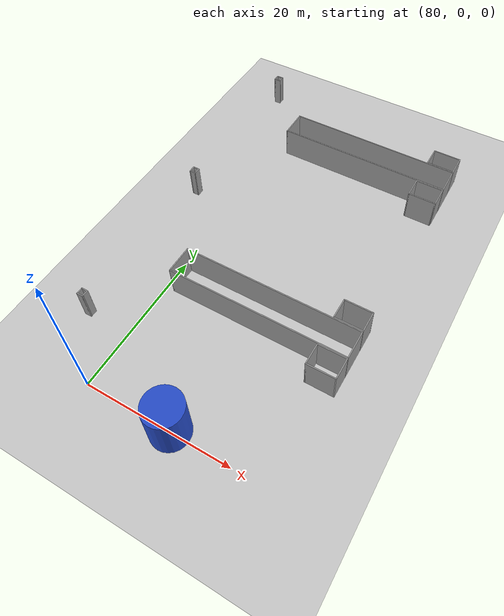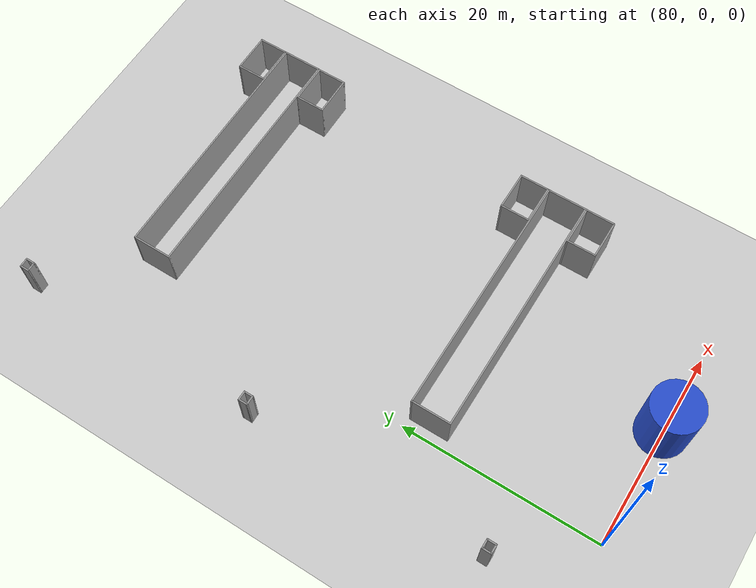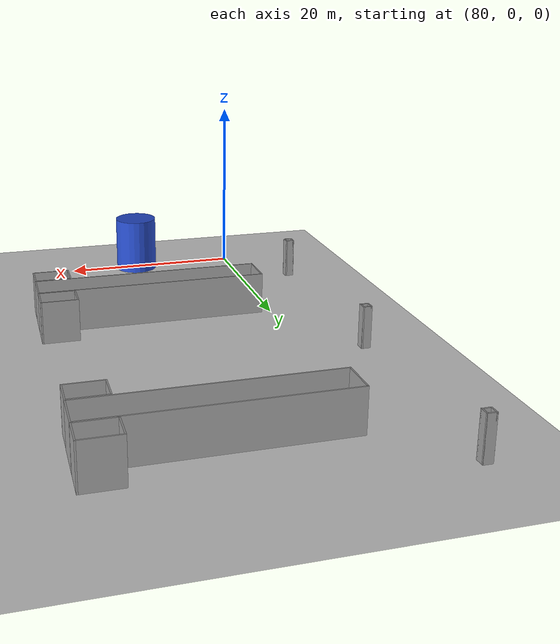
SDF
<sdf version="1.6">
 <world name="default">
  <model name="ground_plane">
   <static>1</static>
   <link name="link">
    <collision name="collision">
     <geometry><plane><normal>0 0 1</normal><size>320 320</size></plane></geometry>
     <surface>
      <contact><collide_bitmask>65535</collide_bitmask></contact>
      <friction><ode><mu>100</mu><mu2>50</mu2></ode></friction>
     </surface>
    </collision>
    <visual name="visual">
     <cast_shadows>0</cast_shadows>
     <geometry><plane><normal>0 0 1</normal><size>320 320</size></plane></geometry>
     <material>
      <script><uri>file://media/materials/scripts/gazebo.material</uri><name>Gazebo/Grey</name></script>
     </material>
    </visual>
   </link>
  </model>
  <model name="base4x25_11">
   <pose>93.5498 47.766 0 0 -0 0</pose>
   <link name="Wall_11">
    <collision name="Wall_11_Collision">
     <geometry><box><size>4 0.15 6.555</size></box></geometry>
     <pose>0 0 1.25 0 -0 0</pose>
    </collision>
    <visual name="Wall_11_Visual">
     <pose>0 0 1.25 0 -0 0</pose>
     <geometry><box><size>4 0.15 6.555</size></box></geometry>
     <material>
      <script><uri>file://media/materials/scripts/gazebo.material</uri><name>Gazebo/Grey</name></script>
      <ambient>1 1 1 1</ambient>
     </material>
     <meta><layer>0</layer></meta>
    </visual>
    <pose>-12.425 0 0 0 -0 -1.5708</pose>
   </link>
   <link name="Wall_12">
    <collision name="Wall_12_Collision">
     <geometry><box><size>25 0.15 6.555</size></box></geometry>
     <pose>0 0 1.25 0 -0 0</pose>
    </collision>
    <visual name="Wall_12_Visual">
     <pose>0 0 1.25 0 -0 0</pose>
     <geometry><box><size>25 0.15 6.555</size></box></geometry>
     <material>
      <script><uri>file://media/materials/scripts/gazebo.material</uri><name>Gazebo/Grey</name></script>
      <ambient>1 1 1 1</ambient>
     </material>
     <meta><layer>0</layer></meta>
    </visual>
    <pose>0 -1.925 0 0 -0 0</pose>
   </link>
   <link name="Wall_13">
    <collision name="Wall_13_Collision">
     <geometry><box><size>4 0.15 6.555</size></box></geometry>
     <pose>0 0 1.25 0 -0 0</pose>
    </collision>
    <visual name="Wall_13_Visual">
     <pose>0 0 1.25 0 -0 0</pose>
     <geometry><box><size>4 0.15 6.555</size></box></geometry>
     <material>
      <script><uri>file://media/materials/scripts/gazebo.material</uri><name>Gazebo/Grey</name></script>
      <ambient>1 1 1 1</ambient>
     </material>
     <meta><layer>0</layer></meta>
    </visual>
    <pose>12.425 0 0 0 -0 1.5708</pose>
   </link>
   <link name="Wall_14">
    <collision name="Wall_14_Collision">
     <geometry><box><size>25 0.15 6.555</size></box></geometry>
     <pose>0 0 1.25 0 -0 0</pose>
    </collision>
    <visual name="Wall_14_Visual">
     <pose>0 0 1.25 0 -0 0</pose>
     <geometry><box><size>25 0.15 6.555</size></box></geometry>
     <material>
      <script><uri>file://media/materials/scripts/gazebo.material</uri><name>Gazebo/Grey</name></script>
      <ambient>1 1 1 1</ambient>
     </material>
     <meta><layer>0</layer></meta>
    </visual>
    <pose>0 1.925 0 0 -0 3.14159</pose>
   </link>
   <static>1</static>
  </model>
  <model name="base4x25_12">
   <pose>93.4688 17.821 0 0 -0 0</pose>
   <link name="Wall_11">
    <collision name="Wall_11_Collision">
     <geometry><box><size>4 0.15 6.555</size></box></geometry>
     <pose>0 0 1.25 0 -0 0</pose>
    </collision>
    <visual name="Wall_11_Visual">
     <pose>0 0 1.25 0 -0 0</pose>
     <geometry><box><size>4 0.15 6.555</size></box></geometry>
     <material>
      <script><uri>file://media/materials/scripts/gazebo.material</uri><name>Gazebo/Grey</name></script>
      <ambient>1 1 1 1</ambient>
     </material>
     <meta><layer>0</layer></meta>
    </visual>
    <pose>-12.425 0 0 0 -0 -1.5708</pose>
   </link>
   <link name="Wall_12">
    <collision name="Wall_12_Collision">
     <geometry><box><size>25 0.15 6.555</size></box></geometry>
     <pose>0 0 1.25 0 -0 0</pose>
    </collision>
    <visual name="Wall_12_Visual">
     <pose>0 0 1.25 0 -0 0</pose>
     <geometry><box><size>25 0.15 6.555</size></box></geometry>
     <material>
      <script><uri>file://media/materials/scripts/gazebo.material</uri><name>Gazebo/Grey</name></script>
      <ambient>1 1 1 1</ambient>
     </material>
     <meta><layer>0</layer></meta>
    </visual>
    <pose>0 -1.925 0 0 -0 0</pose>
   </link>
   <link name="Wall_13">
    <collision name="Wall_13_Collision">
     <geometry><box><size>4 0.15 6.555</size></box></geometry>
     <pose>0 0 1.25 0 -0 0</pose>
    </collision>
    <visual name="Wall_13_Visual">
     <pose>0 0 1.25 0 -0 0</pose>
     <geometry><box><size>4 0.15 6.555</size></box></geometry>
     <material>
      <script><uri>file://media/materials/scripts/gazebo.material</uri><name>Gazebo/Grey</name></script>
      <ambient>1 1 1 1</ambient>
     </material>
     <meta><layer>0</layer></meta>
    </visual>
    <pose>12.425 0 0 0 -0 1.5708</pose>
   </link>
   <link name="Wall_14">
    <collision name="Wall_14_Collision">
     <geometry><box><size>25 0.15 6.555</size></box></geometry>
     <pose>0 0 1.25 0 -0 0</pose>
    </collision>
    <visual name="Wall_14_Visual">
     <pose>0 0 1.25 0 -0 0</pose>
     <geometry><box><size>25 0.15 6.555</size></box></geometry>
     <material>
      <script><uri>file://media/materials/scripts/gazebo.material</uri><name>Gazebo/Grey</name></script>
      <ambient>1 1 1 1</ambient>
     </material>
     <meta><layer>0</layer></meta>
    </visual>
    <pose>0 1.925 0 0 -0 3.14159</pose>
   </link>
   <static>1</static>
  </model>
  <model name="box_1mx1m_clone_3">
   <pose>73.6125 56.2381 0 0 -0 0</pose>
   <link name="Wall_10">
    <collision name="Wall_10_Collision">
     <geometry><box><size>1 0.15 6.555</size></box></geometry>
     <pose>0 0 1.25 0 -0 0</pose>
    </collision>
    <visual name="Wall_10_Visual">
     <pose>0 0 1.25 0 -0 0</pose>
     <geometry><box><size>1 0.15 6.555</size></box></geometry>
     <material>
      <script><uri>file://media/materials/scripts/gazebo.material</uri><name>Gazebo/Grey</name></script>
      <ambient>1 1 1 1</ambient>
     </material>
     <meta><layer>0</layer></meta>
    </visual>
    <pose>-0.425 0 0 0 -0 -1.5708</pose>
   </link>
   <link name="Wall_11">
    <collision name="Wall_11_Collision">
     <geometry><box><size>1 0.15 6.555</size></box></geometry>
     <pose>0 0 1.25 0 -0 0</pose>
    </collision>
    <visual name="Wall_11_Visual">
     <pose>0 0 1.25 0 -0 0</pose>
     <geometry><box><size>1 0.15 6.555</size></box></geometry>
     <material>
      <script><uri>file://media/materials/scripts/gazebo.material</uri><name>Gazebo/Grey</name></script>
      <ambient>1 1 1 1</ambient>
     </material>
     <meta><layer>0</layer></meta>
    </visual>
    <pose>0 -0.425 0 0 -0 0</pose>
   </link>
   <link name="Wall_12">
    <collision name="Wall_12_Collision">
     <geometry><box><size>1 0.15 6.555</size></box></geometry>
     <pose>0 0 1.25 0 -0 0</pose>
    </collision>
    <visual name="Wall_12_Visual">
     <pose>0 0 1.25 0 -0 0</pose>
     <geometry><box><size>1 0.15 6.555</size></box></geometry>
     <material>
      <script><uri>file://media/materials/scripts/gazebo.material</uri><name>Gazebo/Grey</name></script>
      <ambient>1 1 1 1</ambient>
     </material>
     <meta><layer>0</layer></meta>
    </visual>
    <pose>0.425 0 0 0 -0 1.5708</pose>
   </link>
   <link name="Wall_13">
    <collision name="Wall_13_Collision">
     <geometry><box><size>1 0.15 6.555</size></box></geometry>
     <pose>0 0 1.25 0 -0 0</pose>
    </collision>
    <visual name="Wall_13_Visual">
     <pose>0 0 1.25 0 -0 0</pose>
     <geometry><box><size>1 0.15 6.555</size></box></geometry>
     <material>
      <script><uri>file://media/materials/scripts/gazebo.material</uri><name>Gazebo/Grey</name></script>
      <ambient>1 1 1 1</ambient>
     </material>
     <meta><layer>0</layer></meta>
    </visual>
    <pose>0 0.425 0 0 -0 3.14159</pose>
   </link>
   <static>1</static>
  </model>
  <model name="box_1mx1m_clone_4">
   <pose>73.6506 32.002 0 0 -0 0</pose>
   <link name="Wall_10">
    <collision name="Wall_10_Collision">
     <geometry><box><size>1 0.15 6.555</size></box></geometry>
     <pose>0 0 1.25 0 -0 0</pose>
    </collision>
    <visual name="Wall_10_Visual">
     <pose>0 0 1.25 0 -0 0</pose>
     <geometry><box><size>1 0.15 6.555</size></box></geometry>
     <material>
      <script><uri>file://media/materials/scripts/gazebo.material</uri><name>Gazebo/Grey</name></script>
      <ambient>1 1 1 1</ambient>
     </material>
     <meta><layer>0</layer></meta>
    </visual>
    <pose>-0.425 0 0 0 -0 -1.5708</pose>
   </link>
   <link name="Wall_11">
    <collision name="Wall_11_Collision">
     <geometry><box><size>1 0.15 6.555</size></box></geometry>
     <pose>0 0 1.25 0 -0 0</pose>
    </collision>
    <visual name="Wall_11_Visual">
     <pose>0 0 1.25 0 -0 0</pose>
     <geometry><box><size>1 0.15 6.555</size></box></geometry>
     <material>
      <script><uri>file://media/materials/scripts/gazebo.material</uri><name>Gazebo/Grey</name></script>
      <ambient>1 1 1 1</ambient>
     </material>
     <meta><layer>0</layer></meta>
    </visual>
    <pose>0 -0.425 0 0 -0 0</pose>
   </link>
   <link name="Wall_12">
    <collision name="Wall_12_Collision">
     <geometry><box><size>1 0.15 6.555</size></box></geometry>
     <pose>0 0 1.25 0 -0 0</pose>
    </collision>
    <visual name="Wall_12_Visual">
     <pose>0 0 1.25 0 -0 0</pose>
     <geometry><box><size>1 0.15 6.555</size></box></geometry>
     <material>
      <script><uri>file://media/materials/scripts/gazebo.material</uri><name>Gazebo/Grey</name></script>
      <ambient>1 1 1 1</ambient>
     </material>
     <meta><layer>0</layer></meta>
    </visual>
    <pose>0.425 0 0 0 -0 1.5708</pose>
   </link>
   <link name="Wall_13">
    <collision name="Wall_13_Collision">
     <geometry><box><size>1 0.15 6.555</size></box></geometry>
     <pose>0 0 1.25 0 -0 0</pose>
    </collision>
    <visual name="Wall_13_Visual">
     <pose>0 0 1.25 0 -0 0</pose>
     <geometry><box><size>1 0.15 6.555</size></box></geometry>
     <material>
      <script><uri>file://media/materials/scripts/gazebo.material</uri><name>Gazebo/Grey</name></script>
      <ambient>1 1 1 1</ambient>
     </material>
     <meta><layer>0</layer></meta>
    </visual>
    <pose>0 0.425 0 0 -0 3.14159</pose>
   </link>
   <static>1</static>
  </model>
  <model name="box_1mx1m_clone_5">
   <pose>73.7247 7.91393 0 0 -0 0</pose>
   <link name="Wall_10">
    <collision name="Wall_10_Collision">
     <geometry><box><size>1 0.15 6.555</size></box></geometry>
     <pose>0 0 1.25 0 -0 0</pose>
    </collision>
    <visual name="Wall_10_Visual">
     <pose>0 0 1.25 0 -0 0</pose>
     <geometry><box><size>1 0.15 6.555</size></box></geometry>
     <material>
      <script><uri>file://media/materials/scripts/gazebo.material</uri><name>Gazebo/Grey</name></script>
      <ambient>1 1 1 1</ambient>
     </material>
     <meta><layer>0</layer></meta>
    </visual>
    <pose>-0.425 0 0 0 -0 -1.5708</pose>
   </link>
   <link name="Wall_11">
    <collision name="Wall_11_Collision">
     <geometry><box><size>1 0.15 6.555</size></box></geometry>
     <pose>0 0 1.25 0 -0 0</pose>
    </collision>
    <visual name="Wall_11_Visual">
     <pose>0 0 1.25 0 -0 0</pose>
     <geometry><box><size>1 0.15 6.555</size></box></geometry>
     <material>
      <script><uri>file://media/materials/scripts/gazebo.material</uri><name>Gazebo/Grey</name></script>
      <ambient>1 1 1 1</ambient>
     </material>
     <meta><layer>0</layer></meta>
    </visual>
    <pose>0 -0.425 0 0 -0 0</pose>
   </link>
   <link name="Wall_12">
    <collision name="Wall_12_Collision">
     <geometry><box><size>1 0.15 6.555</size></box></geometry>
     <pose>0 0 1.25 0 -0 0</pose>
    </collision>
    <visual name="Wall_12_Visual">
     <pose>0 0 1.25 0 -0 0</pose>
     <geometry><box><size>1 0.15 6.555</size></box></geometry>
     <material>
      <script><uri>file://media/materials/scripts/gazebo.material</uri><name>Gazebo/Grey</name></script>
      <ambient>1 1 1 1</ambient>
     </material>
     <meta><layer>0</layer></meta>
    </visual>
    <pose>0.425 0 0 0 -0 1.5708</pose>
   </link>
   <link name="Wall_13">
    <collision name="Wall_13_Collision">
     <geometry><box><size>1 0.15 6.555</size></box></geometry>
     <pose>0 0 1.25 0 -0 0</pose>
    </collision>
    <visual name="Wall_13_Visual">
     <pose>0 0 1.25 0 -0 0</pose>
     <geometry><box><size>1 0.15 6.555</size></box></geometry>
     <material>
      <script><uri>file://media/materials/scripts/gazebo.material</uri><name>Gazebo/Grey</name></script>
      <ambient>1 1 1 1</ambient>
     </material>
     <meta><layer>0</layer></meta>
    </visual>
    <pose>0 0.425 0 0 -0 3.14159</pose>
   </link>
   <static>1</static>
  </model>
  <model name="base3x4_3_clone_2">
   <pose>104.047 51.2407 0 0 -0 0</pose>
   <link name="Wall_18">
    <collision name="Wall_18_Collision">
     <geometry><box><size>3 0.15 6.555</size></box></geometry>
     <pose>0 0 1.25 0 -0 0</pose>
    </collision>
    <visual name="Wall_18_Visual">
     <pose>0 0 1.25 0 -0 0</pose>
     <geometry><box><size>3 0.15 6.555</size></box></geometry>
     <material>
      <script><uri>file://media/materials/scripts/gazebo.material</uri><name>Gazebo/Grey</name></script>
      <ambient>1 1 1 1</ambient>
     </material>
     <meta><layer>0</layer></meta>
    </visual>
    <pose>-1.925 -0 0 0 -0 -1.5708</pose>
   </link>
   <link name="Wall_19">
    <collision name="Wall_19_Collision">
     <geometry><box><size>4 0.15 6.555</size></box></geometry>
     <pose>0 0 1.25 0 -0 0</pose>
    </collision>
    <visual name="Wall_19_Visual">
     <pose>0 0 1.25 0 -0 0</pose>
     <geometry><box><size>4 0.15 6.555</size></box></geometry>
     <material>
      <script><uri>file://media/materials/scripts/gazebo.material</uri><name>Gazebo/Grey</name></script>
      <ambient>1 1 1 1</ambient>
     </material>
     <meta><layer>0</layer></meta>
    </visual>
    <pose>-0 -1.425 0 0 -0 0</pose>
   </link>
   <link name="Wall_20">
    <collision name="Wall_20_Collision">
     <geometry><box><size>3 0.15 6.555</size></box></geometry>
     <pose>0 0 1.25 0 -0 0</pose>
    </collision>
    <visual name="Wall_20_Visual">
     <pose>0 0 1.25 0 -0 0</pose>
     <geometry><box><size>3 0.15 6.555</size></box></geometry>
     <material>
      <script><uri>file://media/materials/scripts/gazebo.material</uri><name>Gazebo/Grey</name></script>
      <ambient>1 1 1 1</ambient>
     </material>
     <meta><layer>0</layer></meta>
    </visual>
    <pose>1.925 -0 0 0 -0 1.5708</pose>
   </link>
   <link name="Wall_21">
    <collision name="Wall_21_Collision">
     <geometry><box><size>4 0.15 6.555</size></box></geometry>
     <pose>0 0 1.25 0 -0 0</pose>
    </collision>
    <visual name="Wall_21_Visual">
     <pose>0 0 1.25 0 -0 0</pose>
     <geometry><box><size>4 0.15 6.555</size></box></geometry>
     <material>
      <script><uri>file://media/materials/scripts/gazebo.material</uri><name>Gazebo/Grey</name></script>
      <ambient>1 1 1 1</ambient>
     </material>
     <meta><layer>0</layer></meta>
    </visual>
    <pose>-0 1.425 0 0 -0 3.14159</pose>
   </link>
   <static>1</static>
  </model>
  <model name="base3x4_3_clone_3">
   <pose>104.036 44.2698 0 0 -0 0</pose>
   <link name="Wall_18">
    <collision name="Wall_18_Collision">
     <geometry><box><size>3 0.15 6.555</size></box></geometry>
     <pose>0 0 1.25 0 -0 0</pose>
    </collision>
    <visual name="Wall_18_Visual">
     <pose>0 0 1.25 0 -0 0</pose>
     <geometry><box><size>3 0.15 6.555</size></box></geometry>
     <material>
      <script><uri>file://media/materials/scripts/gazebo.material</uri><name>Gazebo/Grey</name></script>
      <ambient>1 1 1 1</ambient>
     </material>
     <meta><layer>0</layer></meta>
    </visual>
    <pose>-1.925 -0 0 0 -0 -1.5708</pose>
   </link>
   <link name="Wall_19">
    <collision name="Wall_19_Collision">
     <geometry><box><size>4 0.15 6.555</size></box></geometry>
     <pose>0 0 1.25 0 -0 0</pose>
    </collision>
    <visual name="Wall_19_Visual">
     <pose>0 0 1.25 0 -0 0</pose>
     <geometry><box><size>4 0.15 6.555</size></box></geometry>
     <material>
      <script><uri>file://media/materials/scripts/gazebo.material</uri><name>Gazebo/Grey</name></script>
      <ambient>1 1 1 1</ambient>
     </material>
     <meta><layer>0</layer></meta>
    </visual>
    <pose>-0 -1.425 0 0 -0 0</pose>
   </link>
   <link name="Wall_20">
    <collision name="Wall_20_Collision">
     <geometry><box><size>3 0.15 6.555</size></box></geometry>
     <pose>0 0 1.25 0 -0 0</pose>
    </collision>
    <visual name="Wall_20_Visual">
     <pose>0 0 1.25 0 -0 0</pose>
     <geometry><box><size>3 0.15 6.555</size></box></geometry>
     <material>
      <script><uri>file://media/materials/scripts/gazebo.material</uri><name>Gazebo/Grey</name></script>
      <ambient>1 1 1 1</ambient>
     </material>
     <meta><layer>0</layer></meta>
    </visual>
    <pose>1.925 -0 0 0 -0 1.5708</pose>
   </link>
   <link name="Wall_21">
    <collision name="Wall_21_Collision">
     <geometry><box><size>4 0.15 6.555</size></box></geometry>
     <pose>0 0 1.25 0 -0 0</pose>
    </collision>
    <visual name="Wall_21_Visual">
     <pose>0 0 1.25 0 -0 0</pose>
     <geometry><box><size>4 0.15 6.555</size></box></geometry>
     <material>
      <script><uri>file://media/materials/scripts/gazebo.material</uri><name>Gazebo/Grey</name></script>
      <ambient>1 1 1 1</ambient>
     </material>
     <meta><layer>0</layer></meta>
    </visual>
    <pose>-0 1.425 0 0 -0 3.14159</pose>
   </link>
   <static>1</static>
  </model>
  <model name="base3x4_3_clone_4">
   <pose>103.978 21.3068 0 0 -0 0</pose>
   <link name="Wall_18">
    <collision name="Wall_18_Collision">
     <geometry><box><size>3 0.15 6.555</size></box></geometry>
     <pose>0 0 1.25 0 -0 0</pose>
    </collision>
    <visual name="Wall_18_Visual">
     <pose>0 0 1.25 0 -0 0</pose>
     <geometry><box><size>3 0.15 6.555</size></box></geometry>
     <material>
      <script><uri>file://media/materials/scripts/gazebo.material</uri><name>Gazebo/Grey</name></script>
      <ambient>1 1 1 1</ambient>
     </material>
     <meta><layer>0</layer></meta>
    </visual>
    <pose>-1.925 -0 0 0 -0 -1.5708</pose>
   </link>
   <link name="Wall_19">
    <collision name="Wall_19_Collision">
     <geometry><box><size>4 0.15 6.555</size></box></geometry>
     <pose>0 0 1.25 0 -0 0</pose>
    </collision>
    <visual name="Wall_19_Visual">
     <pose>0 0 1.25 0 -0 0</pose>
     <geometry><box><size>4 0.15 6.555</size></box></geometry>
     <material>
      <script><uri>file://media/materials/scripts/gazebo.material</uri><name>Gazebo/Grey</name></script>
      <ambient>1 1 1 1</ambient>
     </material>
     <meta><layer>0</layer></meta>
    </visual>
    <pose>-0 -1.425 0 0 -0 0</pose>
   </link>
   <link name="Wall_20">
    <collision name="Wall_20_Collision">
     <geometry><box><size>3 0.15 6.555</size></box></geometry>
     <pose>0 0 1.25 0 -0 0</pose>
    </collision>
    <visual name="Wall_20_Visual">
     <pose>0 0 1.25 0 -0 0</pose>
     <geometry><box><size>3 0.15 6.555</size></box></geometry>
     <material>
      <script><uri>file://media/materials/scripts/gazebo.material</uri><name>Gazebo/Grey</name></script>
      <ambient>1 1 1 1</ambient>
     </material>
     <meta><layer>0</layer></meta>
    </visual>
    <pose>1.925 -0 0 0 -0 1.5708</pose>
   </link>
   <link name="Wall_21">
    <collision name="Wall_21_Collision">
     <geometry><box><size>4 0.15 6.555</size></box></geometry>
     <pose>0 0 1.25 0 -0 0</pose>
    </collision>
    <visual name="Wall_21_Visual">
     <pose>0 0 1.25 0 -0 0</pose>
     <geometry><box><size>4 0.15 6.555</size></box></geometry>
     <material>
      <script><uri>file://media/materials/scripts/gazebo.material</uri><name>Gazebo/Grey</name></script>
      <ambient>1 1 1 1</ambient>
     </material>
     <meta><layer>0</layer></meta>
    </visual>
    <pose>-0 1.425 0 0 -0 3.14159</pose>
   </link>
   <static>1</static>
  </model>
  <model name="base3x4_3_clone_5">
   <pose>103.961 14.3254 0 0 -0 0</pose>
   <link name="Wall_18">
    <collision name="Wall_18_Collision">
     <geometry><box><size>3 0.15 6.555</size></box></geometry>
     <pose>0 0 1.25 0 -0 0</pose>
    </collision>
    <visual name="Wall_18_Visual">
     <pose>0 0 1.25 0 -0 0</pose>
     <geometry><box><size>3 0.15 6.555</size></box></geometry>
     <material>
      <script><uri>file://media/materials/scripts/gazebo.material</uri><name>Gazebo/Grey</name></script>
      <ambient>1 1 1 1</ambient>
     </material>
     <meta><layer>0</layer></meta>
    </visual>
    <pose>-1.925 -0 0 0 -0 -1.5708</pose>
   </link>
   <link name="Wall_19">
    <collision name="Wall_19_Collision">
     <geometry><box><size>4 0.15 6.555</size></box></geometry>
     <pose>0 0 1.25 0 -0 0</pose>
    </collision>
    <visual name="Wall_19_Visual">
     <pose>0 0 1.25 0 -0 0</pose>
     <geometry><box><size>4 0.15 6.555</size></box></geometry>
     <material>
      <script><uri>file://media/materials/scripts/gazebo.material</uri><name>Gazebo/Grey</name></script>
      <ambient>1 1 1 1</ambient>
     </material>
     <meta><layer>0</layer></meta>
    </visual>
    <pose>-0 -1.425 0 0 -0 0</pose>
   </link>
   <link name="Wall_20">
    <collision name="Wall_20_Collision">
     <geometry><box><size>3 0.15 6.555</size></box></geometry>
     <pose>0 0 1.25 0 -0 0</pose>
    </collision>
    <visual name="Wall_20_Visual">
     <pose>0 0 1.25 0 -0 0</pose>
     <geometry><box><size>3 0.15 6.555</size></box></geometry>
     <material>
      <script><uri>file://media/materials/scripts/gazebo.material</uri><name>Gazebo/Grey</name></script>
      <ambient>1 1 1 1</ambient>
     </material>
     <meta><layer>0</layer></meta>
    </visual>
    <pose>1.925 -0 0 0 -0 1.5708</pose>
   </link>
   <link name="Wall_21">
    <collision name="Wall_21_Collision">
     <geometry><box><size>4 0.15 6.555</size></box></geometry>
     <pose>0 0 1.25 0 -0 0</pose>
    </collision>
    <visual name="Wall_21_Visual">
     <pose>0 0 1.25 0 -0 0</pose>
     <geometry><box><size>4 0.15 6.555</size></box></geometry>
     <material>
      <script><uri>file://media/materials/scripts/gazebo.material</uri><name>Gazebo/Grey</name></script>
      <ambient>1 1 1 1</ambient>
     </material>
     <meta><layer>0</layer></meta>
    </visual>
    <pose>-0 1.425 0 0 -0 3.14159</pose>
   </link>
   <static>1</static>
  </model>
  <model name="unit_cylinder_r2.5_l1_clone_6">
   <link name="link">
    <inertial>
     <mass>1</mass>
     <inertia><ixx>0.145833</ixx><ixy>0</ixy><ixz>0</ixz><iyy>0.145833</iyy><iyz>0</iyz><izz>0.125</izz></inertia>
    </inertial>
    <visual name="visual">
     <geometry><cylinder><radius>2.5</radius><length>6.555</length></cylinder></geometry>
     <material>
      <script><name>Gazebo/Blue</name><uri>file://media/materials/scripts/gazebo.material</uri></script>
      <shader type="vertex"><normal_map>__default__</normal_map></shader>
      <ambient>0.3 0.3 0.3 1</ambient>
      <diffuse>0.7 0.7 0.7 1</diffuse>
      <specular>0.01 0.01 0.01 1</specular>
      <emissive>0 0 0 1</emissive>
     </material>
    </visual>
    <collision name="collision">
     <geometry><cylinder><radius>2.5</radius><length>6.555</length></cylinder></geometry>
     <surface>
      <friction>
       <ode><mu>1</mu><mu2>1</mu2><fdir1>0 0 0</fdir1><slip1>0</slip1><slip2>0</slip2></ode>
       <torsional>
        <coefficient>1</coefficient>
        <patch_radius>0</patch_radius>
        <surface_radius>0</surface_radius>
        <use_patch_radius>1</use_patch_radius>
        <ode><slip>0</slip></ode>
       </torsional>
      </friction>
      <bounce><restitution_coefficient>0</restitution_coefficient><threshold>1e+06</threshold></bounce>
      <contact>
       <collide_without_contact>0</collide_without_contact>
       <collide_without_contact_bitmask>1</collide_without_contact_bitmask>
       <collide_bitmask>1</collide_bitmask>
       <ode>
        <soft_cfm>0</soft_cfm>
        <soft_erp>0.2</soft_erp>
        <kp>1e+13</kp>
        <kd>1</kd>
        <max_vel>0.01</max_vel>
        <min_depth>0</min_depth>
       </ode>
       <bullet>
        <split_impulse>1</split_impulse>
        <split_impulse_penetration_threshold>-0.01</split_impulse_penetration_threshold>
        <soft_cfm>0</soft_cfm>
        <soft_erp>0.2</soft_erp>
        <kp>1e+13</kp>
        <kd>1</kd>
       </bullet>
      </contact>
     </surface>
    </collision>
   </link>
   <static>0</static>
   <pose>91.8767 0.199253 3.27733 5.6e-05 5.4e-05 -1.8e-05</pose>
  </model>
 </world>
</sdf>
